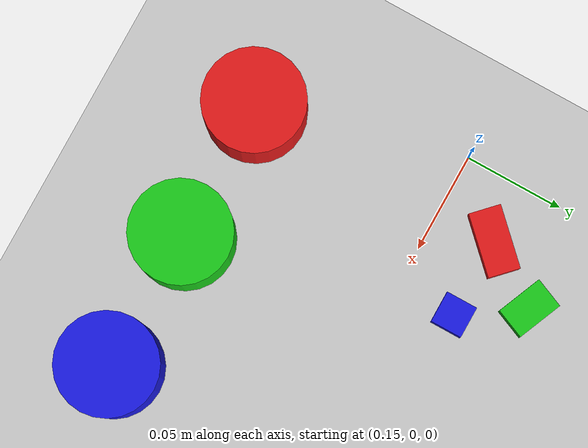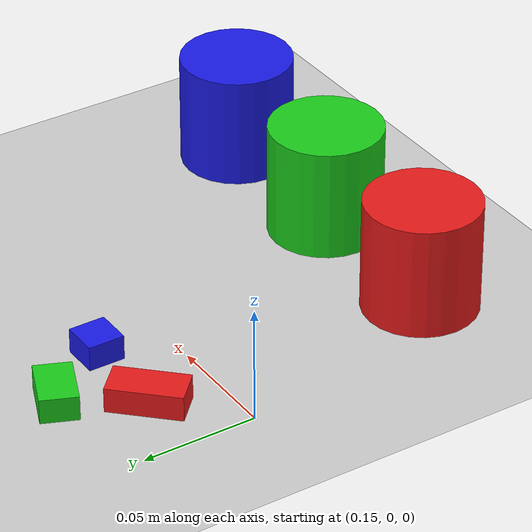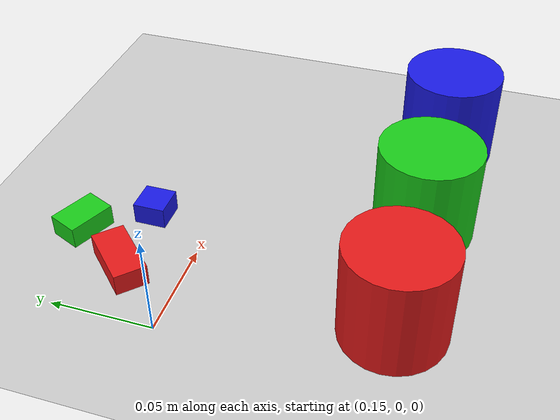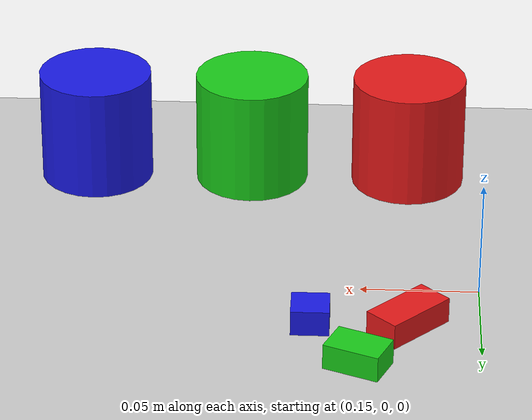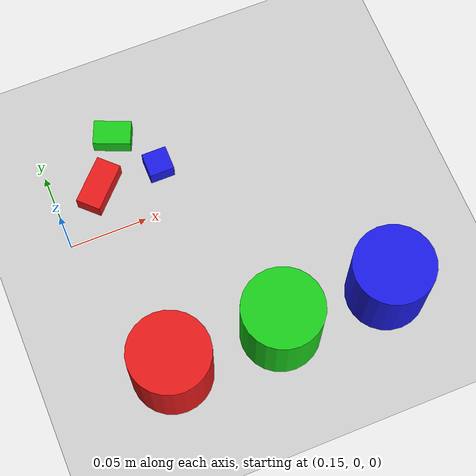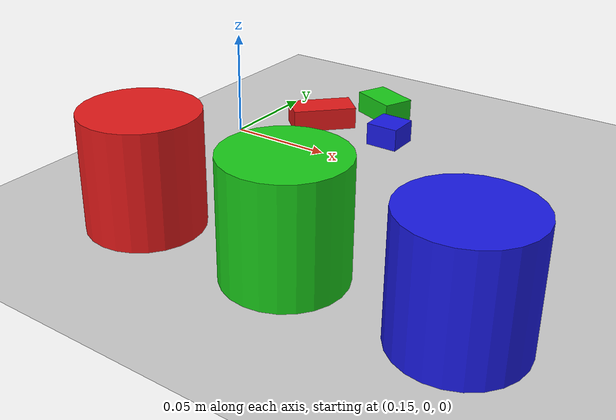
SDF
<?xml version="1.0" ?>
<sdf version="1.8">
  <world name="so_arm101_lego_world">

    <!-- Physics -->
    <physics name="1ms" type="ignored">
      <max_step_size>0.001</max_step_size>
      <real_time_factor>1.0</real_time_factor>
    </physics>

    <!-- Required Ignition Gazebo system plugins -->
    <plugin filename="ignition-gazebo-physics-system"
            name="ignition::gazebo::systems::Physics"/>
    <plugin filename="ignition-gazebo-user-commands-system"
            name="ignition::gazebo::systems::UserCommands"/>
    <plugin filename="ignition-gazebo-scene-broadcaster-system"
            name="ignition::gazebo::systems::SceneBroadcaster"/>
    <plugin filename="ignition-gazebo-sensors-system"
            name="ignition::gazebo::systems::Sensors">
      <render_engine>ogre2</render_engine>
    </plugin>
    <plugin filename="ignition-gazebo-contact-system"
            name="ignition::gazebo::systems::Contact"/>

    <scene>
      <ambient>1.0 1.0 1.0</ambient>
      <background>0.8 0.8 0.8</background>
      <grid>true</grid>
    </scene>

    <!-- Sun light -->
    <light type="directional" name="sun">
      <cast_shadows>true</cast_shadows>
      <pose>0 0 10 0 0 0</pose>
      <diffuse>0.9 0.9 0.9 1</diffuse>
      <specular>0.3 0.3 0.3 1</specular>
      <attenuation>
        <range>1000</range>
        <constant>0.9</constant>
        <linear>0.01</linear>
        <quadratic>0.001</quadratic>
      </attenuation>
      <direction>-0.5 0.1 -0.9</direction>
    </light>

    <!-- Fill light for better camera visibility -->
    <light type="directional" name="fill_light">
      <cast_shadows>false</cast_shadows>
      <pose>0 0 5 0 0 0</pose>
      <diffuse>0.4 0.4 0.4 1</diffuse>
      <specular>0.1 0.1 0.1 1</specular>
      <direction>0.5 -0.3 -0.7</direction>
    </light>

    <!-- Ground plane -->
    <model name="ground_plane">
      <static>true</static>
      <link name="link">
        <collision name="collision">
          <geometry>
            <plane>
              <normal>0 0 1</normal>
              <size>100 100</size>
            </plane>
          </geometry>
          <surface>
            <friction>
              <ode>
                <mu>1.0</mu>
                <mu2>1.0</mu2>
              </ode>
            </friction>
            <contact>
              <ode>
                <min_depth>0.001</min_depth>
              </ode>
            </contact>
          </surface>
        </collision>
        <visual name="visual">
          <geometry>
            <plane>
              <normal>0 0 1</normal>
              <size>100 100</size>
            </plane>
          </geometry>
          <material>
            <ambient>0.8 0.8 0.8 1</ambient>
            <diffuse>0.8 0.8 0.8 1</diffuse>
          </material>
        </visual>
      </link>
    </model>

    <!-- Red lego 2x4: 32x16x11mm -->
    <model name="red_lego_2x4">
      <static>true</static>
      <pose>0.18 0.03 0.0055 0 0 0.8</pose>
      <link name="link">
        <collision name="collision">
          <geometry>
            <box><size>0.032 0.016 0.011</size></box>
          </geometry>
        </collision>
        <visual name="visual">
          <geometry>
            <box><size>0.032 0.016 0.011</size></box>
          </geometry>
          <material>
            <ambient>0.9 0.1 0.1 1</ambient>
            <diffuse>0.9 0.1 0.1 1</diffuse>
            <specular>0.3 0.1 0.1 1</specular>
          </material>
        </visual>
      </link>
    </model>

    <!-- Green lego 2x3: 24x16x11mm -->
    <model name="green_lego_2x3">
      <static>true</static>
      <pose>0.20 0.06 0.0055 0 0 -0.4</pose>
      <link name="link">
        <collision name="collision">
          <geometry>
            <box><size>0.024 0.016 0.011</size></box>
          </geometry>
        </collision>
        <visual name="visual">
          <geometry>
            <box><size>0.024 0.016 0.011</size></box>
          </geometry>
          <material>
            <ambient>0.1 0.8 0.1 1</ambient>
            <diffuse>0.1 0.8 0.1 1</diffuse>
            <specular>0.1 0.3 0.1 1</specular>
          </material>
        </visual>
      </link>
    </model>

    <!-- Blue lego 2x2: 16x16x11mm -->
    <model name="blue_lego_2x2">
      <static>true</static>
      <pose>0.22 0.03 0.0055 0 0 0.0</pose>
      <link name="link">
        <collision name="collision">
          <geometry>
            <box><size>0.016 0.016 0.011</size></box>
          </geometry>
        </collision>
        <visual name="visual">
          <geometry>
            <box><size>0.016 0.016 0.011</size></box>
          </geometry>
          <material>
            <ambient>0.1 0.1 0.9 1</ambient>
            <diffuse>0.1 0.1 0.9 1</diffuse>
            <specular>0.1 0.1 0.3 1</specular>
          </material>
        </visual>
      </link>
    </model>

    <!-- Red cup: 50mm dia, 50mm tall. -->
    <model name="cup_red">
      <static>true</static>
      <pose>0.18 -0.10 0.025 0 0 0</pose>
      <link name="link">
        <collision name="collision">
          <geometry>
            <cylinder>
              <radius>0.025</radius>
              <length>0.050</length>
            </cylinder>
          </geometry>
        </collision>
        <visual name="visual">
          <geometry>
            <cylinder>
              <radius>0.025</radius>
              <length>0.050</length>
            </cylinder>
          </geometry>
          <material>
            <ambient>0.9 0.1 0.1 1</ambient>
            <diffuse>0.9 0.1 0.1 1</diffuse>
            <specular>0.3 0.1 0.1 1</specular>
          </material>
        </visual>
      </link>
    </model>
    <model name="drop_red">
      <static>true</static>
      <pose>0.205 -0.10 0.0225 0 1.5708 0</pose>
      <link name="link"/>
    </model>

    <!-- Green cup: 50mm dia, 50mm tall. -->
    <model name="cup_green">
      <static>true</static>
      <pose>0.25 -0.10 0.025 0 0 0</pose>
      <link name="link">
        <collision name="collision">
          <geometry>
            <cylinder>
              <radius>0.025</radius>
              <length>0.050</length>
            </cylinder>
          </geometry>
        </collision>
        <visual name="visual">
          <geometry>
            <cylinder>
              <radius>0.025</radius>
              <length>0.050</length>
            </cylinder>
          </geometry>
          <material>
            <ambient>0.1 0.8 0.1 1</ambient>
            <diffuse>0.1 0.8 0.1 1</diffuse>
            <specular>0.1 0.3 0.1 1</specular>
          </material>
        </visual>
      </link>
    </model>
    <model name="drop_green">
      <static>true</static>
      <pose>0.275 -0.10 0.0225 0 1.5708 0</pose>
      <link name="link"/>
    </model>

    <!-- Blue cup: 50mm dia, 50mm tall. -->
    <model name="cup_blue">
      <static>true</static>
      <pose>0.32 -0.10 0.025 0 0 0</pose>
      <link name="link">
        <collision name="collision">
          <geometry>
            <cylinder>
              <radius>0.025</radius>
              <length>0.050</length>
            </cylinder>
          </geometry>
        </collision>
        <visual name="visual">
          <geometry>
            <cylinder>
              <radius>0.025</radius>
              <length>0.050</length>
            </cylinder>
          </geometry>
          <material>
            <ambient>0.1 0.1 0.9 1</ambient>
            <diffuse>0.1 0.1 0.9 1</diffuse>
            <specular>0.1 0.1 0.3 1</specular>
          </material>
        </visual>
      </link>
    </model>
    <model name="drop_blue">
      <static>true</static>
      <pose>0.345 -0.10 0.0225 0 1.5708 0</pose>
      <link name="link"/>
    </model>

    <!-- GUI (only used when not running headless) -->
    <gui fullscreen="0">
      <plugin filename="MinimalScene" name="3D View">
        <gz-gui>
          <title>3D View</title>
          <property type="bool" key="showTitleBar">false</property>
          <property type="string" key="state">docked</property>
        </gz-gui>
        <engine>ogre2</engine>
        <scene>scene</scene>
        <ambient_light>0.4 0.4 0.4</ambient_light>
        <background_color>0.8 0.8 0.8</background_color>
        <camera_pose>-0.3 0.4 0.4 0 0.5 -0.8</camera_pose>
      </plugin>

      <plugin filename="EntityContextMenuPlugin" name="Entity context menu">
        <gz-gui>
          <property key="state" type="string">floating</property>
          <property key="width" type="double">5</property>
          <property key="height" type="double">5</property>
          <property key="showTitleBar" type="bool">false</property>
        </gz-gui>
      </plugin>
      <plugin filename="GzSceneManager" name="Scene Manager">
        <gz-gui>
          <property key="resizable" type="bool">false</property>
          <property key="width" type="double">5</property>
          <property key="height" type="double">5</property>
          <property key="state" type="string">floating</property>
          <property key="showTitleBar" type="bool">false</property>
        </gz-gui>
      </plugin>
      <plugin filename="InteractiveViewControl" name="Interactive view control">
        <gz-gui>
          <property key="resizable" type="bool">false</property>
          <property key="width" type="double">5</property>
          <property key="height" type="double">5</property>
          <property key="state" type="string">floating</property>
          <property key="showTitleBar" type="bool">false</property>
        </gz-gui>
      </plugin>
      <plugin filename="CameraTracking" name="Camera Tracking">
        <gz-gui>
          <property key="resizable" type="bool">false</property>
          <property key="width" type="double">5</property>
          <property key="height" type="double">5</property>
          <property key="state" type="string">floating</property>
          <property key="showTitleBar" type="bool">false</property>
        </gz-gui>
      </plugin>

      <plugin filename="WorldControl" name="World control">
        <gz-gui>
          <title>World control</title>
          <property type="bool" key="showTitleBar">false</property>
          <property type="bool" key="resizable">false</property>
          <property type="double" key="height">72</property>
          <property type="double" key="z">1</property>
          <property type="string" key="state">floating</property>
          <anchors target="3D View">
            <line own="left" target="left"/>
            <line own="bottom" target="bottom"/>
          </anchors>
        </gz-gui>
        <play_pause>true</play_pause>
        <step>true</step>
        <start_paused>true</start_paused>
        <use_event>true</use_event>
      </plugin>

      <plugin filename="WorldStats" name="World stats">
        <gz-gui>
          <title>World stats</title>
          <property type="bool" key="showTitleBar">false</property>
          <property type="bool" key="resizable">false</property>
          <property type="double" key="height">110</property>
          <property type="double" key="width">290</property>
          <property type="double" key="z">1</property>
          <property type="string" key="state">floating</property>
          <anchors target="3D View">
            <line own="right" target="right"/>
            <line own="bottom" target="bottom"/>
          </anchors>
        </gz-gui>
        <sim_time>true</sim_time>
        <real_time>true</real_time>
        <real_time_factor>true</real_time_factor>
        <iterations>true</iterations>
      </plugin>

      <plugin filename="ComponentInspector" name="Component inspector">
        <gz-gui>
          <property type="string" key="state">docked</property>
        </gz-gui>
      </plugin>

      <plugin filename="EntityTree" name="Entity tree">
        <gz-gui>
          <property type="string" key="state">docked</property>
        </gz-gui>
      </plugin>
    </gui>

  </world>
</sdf>
